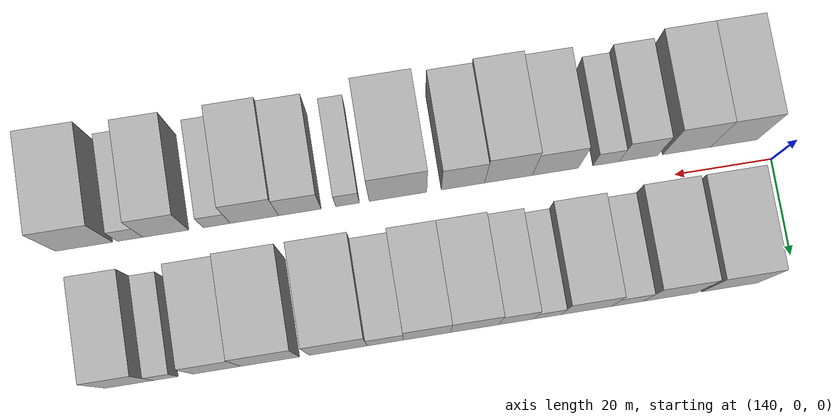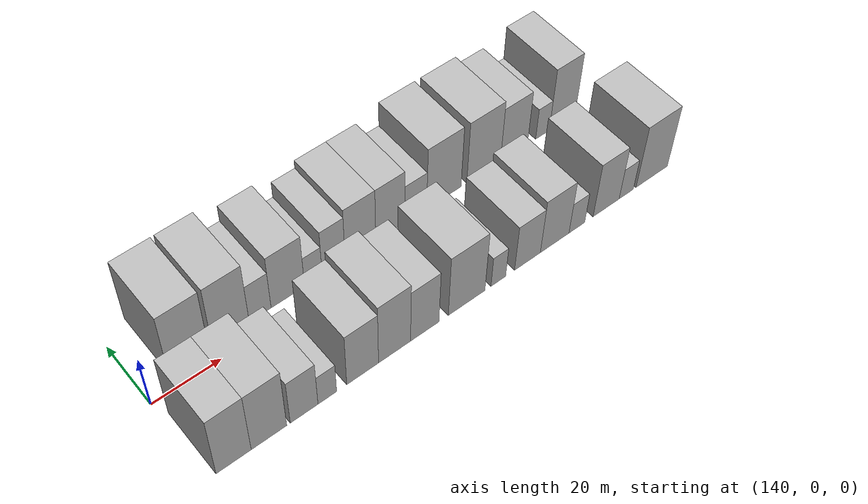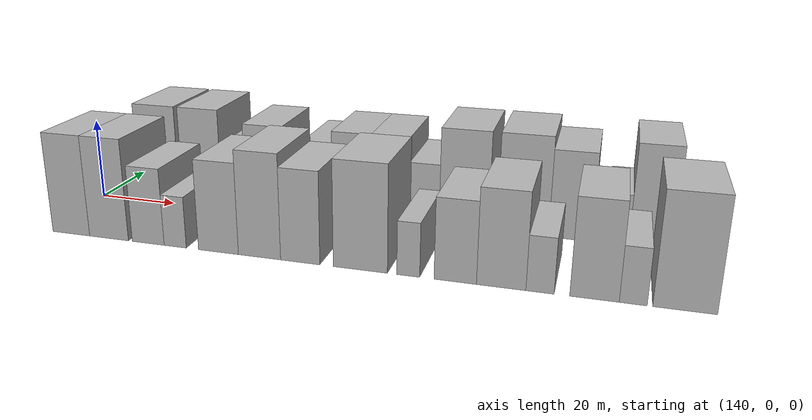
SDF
<sdf version="1.6">
 <world name="default">
  <model name="building_14">
   <static>1</static>
   <pose>153.4998 14.5000 0 0.000000 0.000000 1.570796</pose>
   <link name="link">
    <pose>0 0 12.00 0 0 0</pose>
    <collision name="collision"><geometry><box><size>20.0000 11.5773 24.0000</size></box></geometry></collision>
    <visual name="visual">
     <cast_shadows>0</cast_shadows>
     <geometry><box><size>20.0000 11.5773 24.0000</size></box></geometry>
     <material>
      <script>
       <uri>model://HANNAS_wall/materials/scripts</uri>
       <uri>model://HANNAS_wall/materials/textures</uri>
       <name>vrc/HANNAS_wall</name>
      </script>
     </material>
    </visual>
   </link>
  </model>
  <model name="building_15">
   <static>1</static>
   <pose>165.7595 14.5000 0 0.000000 0.000000 1.570796</pose>
   <link name="link">
    <pose>0 0 12.00 0 0 0</pose>
    <collision name="collision"><geometry><box><size>20.0000 10.9421 24.0000</size></box></geometry></collision>
    <visual name="visual">
     <cast_shadows>0</cast_shadows>
     <geometry><box><size>20.0000 10.9421 24.0000</size></box></geometry>
     <material>
      <script>
       <uri>model://HANNAS_wall/materials/scripts</uri>
       <uri>model://HANNAS_wall/materials/textures</uri>
       <name>vrc/HANNAS_wall</name>
      </script>
     </material>
    </visual>
   </link>
  </model>
  <model name="building_16">
   <static>1</static>
   <pose>174.5269 14.5000 0 0.000000 0.000000 1.570796</pose>
   <link name="link">
    <pose>0 0 7.50 0 0 0</pose>
    <collision name="collision"><geometry><box><size>20.0000 6.5929 15.0000</size></box></geometry></collision>
    <visual name="visual">
     <cast_shadows>0</cast_shadows>
     <geometry><box><size>20.0000 6.5929 15.0000</size></box></geometry>
     <material>
      <script>
       <uri>model://HANNAS_wall/materials/scripts</uri>
       <uri>model://HANNAS_wall/materials/textures</uri>
       <name>vrc/HANNAS_wall</name>
      </script>
     </material>
    </visual>
   </link>
  </model>
  <model name="building_17">
   <static>1</static>
   <pose>182.9352 14.5000 0 0.000000 0.000000 1.570796</pose>
   <link name="link">
    <pose>0 0 10.50 0 0 0</pose>
    <collision name="collision"><geometry><box><size>20.0000 10.2236 21.0000</size></box></geometry></collision>
    <visual name="visual">
     <cast_shadows>0</cast_shadows>
     <geometry><box><size>20.0000 10.2236 21.0000</size></box></geometry>
     <material>
      <script>
       <uri>model://HANNAS_wall/materials/scripts</uri>
       <uri>model://HANNAS_wall/materials/textures</uri>
       <name>vrc/HANNAS_wall</name>
      </script>
     </material>
    </visual>
   </link>
  </model>
  <model name="building_18">
   <static>1</static>
   <pose>190.7965 14.5000 0 0.000000 0.000000 1.570796</pose>
   <link name="link">
    <pose>0 0 6.00 0 0 0</pose>
    <collision name="collision"><geometry><box><size>20.0000 5.4990 12.0000</size></box></geometry></collision>
    <visual name="visual">
     <cast_shadows>0</cast_shadows>
     <geometry><box><size>20.0000 5.4990 12.0000</size></box></geometry>
     <material>
      <script>
       <uri>model://HANNAS_wall/materials/scripts</uri>
       <uri>model://HANNAS_wall/materials/textures</uri>
       <name>vrc/HANNAS_wall</name>
      </script>
     </material>
    </visual>
   </link>
  </model>
  <model name="building_19">
   <static>1</static>
   <pose>197.1813 14.5000 0 0.000000 0.000000 1.570796</pose>
   <link name="link">
    <pose>0 0 9.00 0 0 0</pose>
    <collision name="collision"><geometry><box><size>20.0000 7.2705 18.0000</size></box></geometry></collision>
    <visual name="visual">
     <cast_shadows>0</cast_shadows>
     <geometry><box><size>20.0000 7.2705 18.0000</size></box></geometry>
     <material>
      <script>
       <uri>model://HANNAS_wall/materials/scripts</uri>
       <uri>model://HANNAS_wall/materials/textures</uri>
       <name>vrc/HANNAS_wall</name>
      </script>
     </material>
    </visual>
   </link>
  </model>
  <model name="building_20">
   <static>1</static>
   <pose>205.7547 14.5000 0 0.000000 0.000000 1.570796</pose>
   <link name="link">
    <pose>0 0 10.50 0 0 0</pose>
    <collision name="collision"><geometry><box><size>20.0000 9.8763 21.0000</size></box></geometry></collision>
    <visual name="visual">
     <cast_shadows>0</cast_shadows>
     <geometry><box><size>20.0000 9.8763 21.0000</size></box></geometry>
     <material>
      <script>
       <uri>model://HANNAS_wall/materials/scripts</uri>
       <uri>model://HANNAS_wall/materials/textures</uri>
       <name>vrc/HANNAS_wall</name>
      </script>
     </material>
    </visual>
   </link>
  </model>
  <model name="building_21">
   <static>1</static>
   <pose>215.4536 14.5000 0 0.000000 0.000000 1.570796</pose>
   <link name="link">
    <pose>0 0 10.50 0 0 0</pose>
    <collision name="collision"><geometry><box><size>20.0000 9.5215 21.0000</size></box></geometry></collision>
    <visual name="visual">
     <cast_shadows>0</cast_shadows>
     <geometry><box><size>20.0000 9.5215 21.0000</size></box></geometry>
     <material>
      <script>
       <uri>model://HANNAS_wall/materials/scripts</uri>
       <uri>model://HANNAS_wall/materials/textures</uri>
       <name>vrc/HANNAS_wall</name>
      </script>
     </material>
    </visual>
   </link>
  </model>
  <model name="building_22">
   <static>1</static>
   <pose>223.8726 14.5000 0 0.000000 0.000000 1.570796</pose>
   <link name="link">
    <pose>0 0 7.50 0 0 0</pose>
    <collision name="collision"><geometry><box><size>20.0000 7.3166 15.0000</size></box></geometry></collision>
    <visual name="visual">
     <cast_shadows>0</cast_shadows>
     <geometry><box><size>20.0000 7.3166 15.0000</size></box></geometry>
     <material>
      <script>
       <uri>model://HANNAS_wall/materials/scripts</uri>
       <uri>model://HANNAS_wall/materials/textures</uri>
       <name>vrc/HANNAS_wall</name>
      </script>
     </material>
    </visual>
   </link>
  </model>
  <model name="building_23">
   <static>1</static>
   <pose>233.4138 14.5000 0 0.000000 0.000000 1.570796</pose>
   <link name="link">
    <pose>0 0 12.00 0 0 0</pose>
    <collision name="collision"><geometry><box><size>20.0000 11.7658 24.0000</size></box></geometry></collision>
    <visual name="visual">
     <cast_shadows>0</cast_shadows>
     <geometry><box><size>20.0000 11.7658 24.0000</size></box></geometry>
     <material>
      <script>
       <uri>model://HANNAS_wall/materials/scripts</uri>
       <uri>model://HANNAS_wall/materials/textures</uri>
       <name>vrc/HANNAS_wall</name>
      </script>
     </material>
    </visual>
   </link>
  </model>
  <model name="building_24">
   <static>1</static>
   <pose>247.2125 14.5000 0 0.000000 0.000000 1.570796</pose>
   <link name="link">
    <pose>0 0 12.00 0 0 0</pose>
    <collision name="collision"><geometry><box><size>20.0000 11.8316 24.0000</size></box></geometry></collision>
    <visual name="visual">
     <cast_shadows>0</cast_shadows>
     <geometry><box><size>20.0000 11.8316 24.0000</size></box></geometry>
     <material>
      <script>
       <uri>model://HANNAS_wall/materials/scripts</uri>
       <uri>model://HANNAS_wall/materials/textures</uri>
       <name>vrc/HANNAS_wall</name>
      </script>
     </material>
    </visual>
   </link>
  </model>
  <model name="building_25">
   <static>1</static>
   <pose>257.9860 14.5000 0 0.000000 0.000000 1.570796</pose>
   <link name="link">
    <pose>0 0 10.50 0 0 0</pose>
    <collision name="collision"><geometry><box><size>20.0000 9.7156 21.0000</size></box></geometry></collision>
    <visual name="visual">
     <cast_shadows>0</cast_shadows>
     <geometry><box><size>20.0000 9.7156 21.0000</size></box></geometry>
     <material>
      <script>
       <uri>model://HANNAS_wall/materials/scripts</uri>
       <uri>model://HANNAS_wall/materials/textures</uri>
       <name>vrc/HANNAS_wall</name>
      </script>
     </material>
    </visual>
   </link>
  </model>
  <model name="building_26">
   <static>1</static>
   <pose>268.3505 14.5000 0 0.000000 0.000000 1.570796</pose>
   <link name="link">
    <pose>0 0 6.00 0 0 0</pose>
    <collision name="collision"><geometry><box><size>20.0000 5.0134 12.0000</size></box></geometry></collision>
    <visual name="visual">
     <cast_shadows>0</cast_shadows>
     <geometry><box><size>20.0000 5.0134 12.0000</size></box></geometry>
     <material>
      <script>
       <uri>model://HANNAS_wall/materials/scripts</uri>
       <uri>model://HANNAS_wall/materials/textures</uri>
       <name>vrc/HANNAS_wall</name>
      </script>
     </material>
    </visual>
   </link>
  </model>
  <model name="building_27">
   <static>1</static>
   <pose>275.6742 14.5000 0 0.000000 0.000000 1.570796</pose>
   <link name="link">
    <pose>0 0 12.00 0 0 0</pose>
    <collision name="collision"><geometry><box><size>20.0000 9.6340 24.0000</size></box></geometry></collision>
    <visual name="visual">
     <cast_shadows>0</cast_shadows>
     <geometry><box><size>20.0000 9.6340 24.0000</size></box></geometry>
     <material>
      <script>
       <uri>model://HANNAS_wall/materials/scripts</uri>
       <uri>model://HANNAS_wall/materials/textures</uri>
       <name>vrc/HANNAS_wall</name>
      </script>
     </material>
    </visual>
   </link>
  </model>
  <model name="building_42">
   <static>1</static>
   <pose>146.8254 -14.5000 0 0.000000 0.000000 1.570796</pose>
   <link name="link">
    <pose>0 0 12.00 0 0 0</pose>
    <collision name="collision"><geometry><box><size>20.0000 9.7575 24.0000</size></box></geometry></collision>
    <visual name="visual">
     <cast_shadows>0</cast_shadows>
     <geometry><box><size>20.0000 9.7575 24.0000</size></box></geometry>
     <material>
      <script>
       <uri>model://HANNAS_wall/materials/scripts</uri>
       <uri>model://HANNAS_wall/materials/textures</uri>
       <name>vrc/HANNAS_wall</name>
      </script>
     </material>
    </visual>
   </link>
  </model>
  <model name="building_43">
   <static>1</static>
   <pose>156.7354 -14.5000 0 0.000000 0.000000 1.570796</pose>
   <link name="link">
    <pose>0 0 12.00 0 0 0</pose>
    <collision name="collision"><geometry><box><size>20.0000 10.0626 24.0000</size></box></geometry></collision>
    <visual name="visual">
     <cast_shadows>0</cast_shadows>
     <geometry><box><size>20.0000 10.0626 24.0000</size></box></geometry>
     <material>
      <script>
       <uri>model://HANNAS_wall/materials/scripts</uri>
       <uri>model://HANNAS_wall/materials/textures</uri>
       <name>vrc/HANNAS_wall</name>
      </script>
     </material>
    </visual>
   </link>
  </model>
  <model name="building_44">
   <static>1</static>
   <pose>166.7899 -14.5000 0 0.000000 0.000000 1.570796</pose>
   <link name="link">
    <pose>0 0 9.00 0 0 0</pose>
    <collision name="collision"><geometry><box><size>20.0000 8.0464 18.0000</size></box></geometry></collision>
    <visual name="visual">
     <cast_shadows>0</cast_shadows>
     <geometry><box><size>20.0000 8.0464 18.0000</size></box></geometry>
     <material>
      <script>
       <uri>model://HANNAS_wall/materials/scripts</uri>
       <uri>model://HANNAS_wall/materials/textures</uri>
       <name>vrc/HANNAS_wall</name>
      </script>
     </material>
    </visual>
   </link>
  </model>
  <model name="building_45">
   <static>1</static>
   <pose>173.5563 -14.5000 0 0.000000 0.000000 1.570796</pose>
   <link name="link">
    <pose>0 0 6.00 0 0 0</pose>
    <collision name="collision"><geometry><box><size>20.0000 5.4864 12.0000</size></box></geometry></collision>
    <visual name="visual">
     <cast_shadows>0</cast_shadows>
     <geometry><box><size>20.0000 5.4864 12.0000</size></box></geometry>
     <material>
      <script>
       <uri>model://HANNAS_wall/materials/scripts</uri>
       <uri>model://HANNAS_wall/materials/textures</uri>
       <name>vrc/HANNAS_wall</name>
      </script>
     </material>
    </visual>
   </link>
  </model>
  <model name="building_46">
   <static>1</static>
   <pose>184.1044 -14.5000 0 0.000000 0.000000 1.570796</pose>
   <link name="link">
    <pose>0 0 10.50 0 0 0</pose>
    <collision name="collision"><geometry><box><size>20.0000 9.6098 21.0000</size></box></geometry></collision>
    <visual name="visual">
     <cast_shadows>0</cast_shadows>
     <geometry><box><size>20.0000 9.6098 21.0000</size></box></geometry>
     <material>
      <script>
       <uri>model://HANNAS_wall/materials/scripts</uri>
       <uri>model://HANNAS_wall/materials/textures</uri>
       <name>vrc/HANNAS_wall</name>
      </script>
     </material>
    </visual>
   </link>
  </model>
  <model name="building_47">
   <static>1</static>
   <pose>193.8530 -14.5000 0 0.000000 0.000000 1.570796</pose>
   <link name="link">
    <pose>0 0 12.00 0 0 0</pose>
    <collision name="collision"><geometry><box><size>20.0000 9.8873 24.0000</size></box></geometry></collision>
    <visual name="visual">
     <cast_shadows>0</cast_shadows>
     <geometry><box><size>20.0000 9.8873 24.0000</size></box></geometry>
     <material>
      <script>
       <uri>model://HANNAS_wall/materials/scripts</uri>
       <uri>model://HANNAS_wall/materials/textures</uri>
       <name>vrc/HANNAS_wall</name>
      </script>
     </material>
    </visual>
   </link>
  </model>
  <model name="building_48">
   <static>1</static>
   <pose>203.2774 -14.5000 0 0.000000 0.000000 1.570796</pose>
   <link name="link">
    <pose>0 0 10.50 0 0 0</pose>
    <collision name="collision"><geometry><box><size>20.0000 8.9614 21.0000</size></box></geometry></collision>
    <visual name="visual">
     <cast_shadows>0</cast_shadows>
     <geometry><box><size>20.0000 8.9614 21.0000</size></box></geometry>
     <material>
      <script>
       <uri>model://HANNAS_wall/materials/scripts</uri>
       <uri>model://HANNAS_wall/materials/textures</uri>
       <name>vrc/HANNAS_wall</name>
      </script>
     </material>
    </visual>
   </link>
  </model>
  <model name="building_49">
   <static>1</static>
   <pose>216.7071 -14.5000 0 0.000000 0.000000 1.570796</pose>
   <link name="link">
    <pose>0 0 12.00 0 0 0</pose>
    <collision name="collision"><geometry><box><size>20.0000 11.8980 24.0000</size></box></geometry></collision>
    <visual name="visual">
     <cast_shadows>0</cast_shadows>
     <geometry><box><size>20.0000 11.8980 24.0000</size></box></geometry>
     <material>
      <script>
       <uri>model://HANNAS_wall/materials/scripts</uri>
       <uri>model://HANNAS_wall/materials/textures</uri>
       <name>vrc/HANNAS_wall</name>
      </script>
     </material>
    </visual>
   </link>
  </model>
  <model name="building_50">
   <static>1</static>
   <pose>227.1033 -14.5000 0 0.000000 0.000000 1.570796</pose>
   <link name="link">
    <pose>0 0 6.00 0 0 0</pose>
    <collision name="collision"><geometry><box><size>20.0000 4.8944 12.0000</size></box></geometry></collision>
    <visual name="visual">
     <cast_shadows>0</cast_shadows>
     <geometry><box><size>20.0000 4.8944 12.0000</size></box></geometry>
     <material>
      <script>
       <uri>model://HANNAS_wall/materials/scripts</uri>
       <uri>model://HANNAS_wall/materials/textures</uri>
       <name>vrc/HANNAS_wall</name>
      </script>
     </material>
    </visual>
   </link>
  </model>
  <model name="building_51">
   <static>1</static>
   <pose>236.9321 -14.5000 0 0.000000 0.000000 1.570796</pose>
   <link name="link">
    <pose>0 0 9.00 0 0 0</pose>
    <collision name="collision"><geometry><box><size>20.0000 8.7633 18.0000</size></box></geometry></collision>
    <visual name="visual">
     <cast_shadows>0</cast_shadows>
     <geometry><box><size>20.0000 8.7633 18.0000</size></box></geometry>
     <material>
      <script>
       <uri>model://HANNAS_wall/materials/scripts</uri>
       <uri>model://HANNAS_wall/materials/textures</uri>
       <name>vrc/HANNAS_wall</name>
      </script>
     </material>
    </visual>
   </link>
  </model>
  <model name="building_52">
   <static>1</static>
   <pose>246.2803 -14.5000 0 0.000000 0.000000 1.570796</pose>
   <link name="link">
    <pose>0 0 10.50 0 0 0</pose>
    <collision name="collision"><geometry><box><size>20.0000 9.9333 21.0000</size></box></geometry></collision>
    <visual name="visual">
     <cast_shadows>0</cast_shadows>
     <geometry><box><size>20.0000 9.9333 21.0000</size></box></geometry>
     <material>
      <script>
       <uri>model://HANNAS_wall/materials/scripts</uri>
       <uri>model://HANNAS_wall/materials/textures</uri>
       <name>vrc/HANNAS_wall</name>
      </script>
     </material>
    </visual>
   </link>
  </model>
  <model name="building_53">
   <static>1</static>
   <pose>254.0213 -14.5000 0 0.000000 0.000000 1.570796</pose>
   <link name="link">
    <pose>0 0 6.00 0 0 0</pose>
    <collision name="collision"><geometry><box><size>20.0000 5.5487 12.0000</size></box></geometry></collision>
    <visual name="visual">
     <cast_shadows>0</cast_shadows>
     <geometry><box><size>20.0000 5.5487 12.0000</size></box></geometry>
     <material>
      <script>
       <uri>model://HANNAS_wall/materials/scripts</uri>
       <uri>model://HANNAS_wall/materials/textures</uri>
       <name>vrc/HANNAS_wall</name>
      </script>
     </material>
    </visual>
   </link>
  </model>
  <model name="building_54">
   <static>1</static>
   <pose>264.5015 -14.5000 0 0.000000 0.000000 1.570796</pose>
   <link name="link">
    <pose>0 0 10.50 0 0 0</pose>
    <collision name="collision"><geometry><box><size>20.0000 9.4117 21.0000</size></box></geometry></collision>
    <visual name="visual">
     <cast_shadows>0</cast_shadows>
     <geometry><box><size>20.0000 9.4117 21.0000</size></box></geometry>
     <material>
      <script>
       <uri>model://HANNAS_wall/materials/scripts</uri>
       <uri>model://HANNAS_wall/materials/textures</uri>
       <name>vrc/HANNAS_wall</name>
      </script>
     </material>
    </visual>
   </link>
  </model>
  <model name="building_55">
   <static>1</static>
   <pose>271.8073 -14.5000 0 0.000000 0.000000 1.570796</pose>
   <link name="link">
    <pose>0 0 6.00 0 0 0</pose>
    <collision name="collision"><geometry><box><size>20.0000 5.2000 12.0000</size></box></geometry></collision>
    <visual name="visual">
     <cast_shadows>0</cast_shadows>
     <geometry><box><size>20.0000 5.2000 12.0000</size></box></geometry>
     <material>
      <script>
       <uri>model://HANNAS_wall/materials/scripts</uri>
       <uri>model://HANNAS_wall/materials/textures</uri>
       <name>vrc/HANNAS_wall</name>
      </script>
     </material>
    </visual>
   </link>
  </model>
  <model name="building_56">
   <static>1</static>
   <pose>281.2552 -14.5000 0 0.000000 0.000000 1.570796</pose>
   <link name="link">
    <pose>0 0 12.00 0 0 0</pose>
    <collision name="collision"><geometry><box><size>20.0000 11.6956 24.0000</size></box></geometry></collision>
    <visual name="visual">
     <cast_shadows>0</cast_shadows>
     <geometry><box><size>20.0000 11.6956 24.0000</size></box></geometry>
     <material>
      <script>
       <uri>model://HANNAS_wall/materials/scripts</uri>
       <uri>model://HANNAS_wall/materials/textures</uri>
       <name>vrc/HANNAS_wall</name>
      </script>
     </material>
    </visual>
   </link>
  </model>
 </world>
</sdf>
